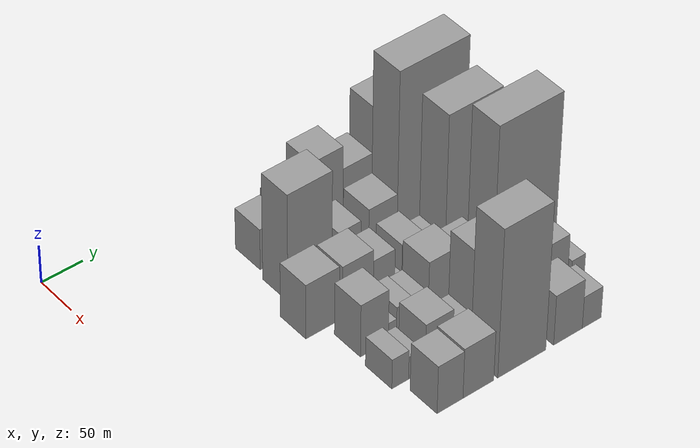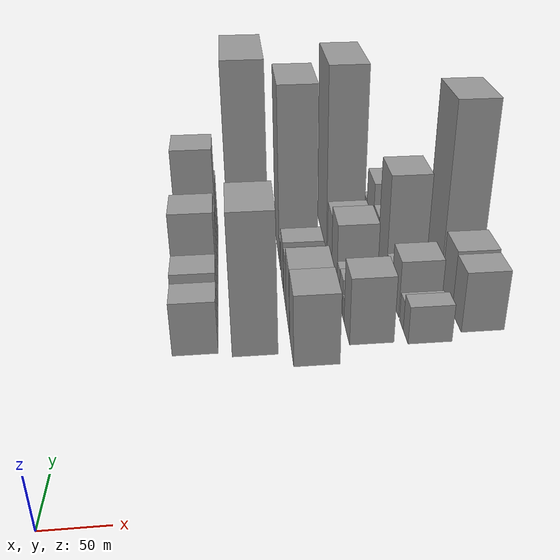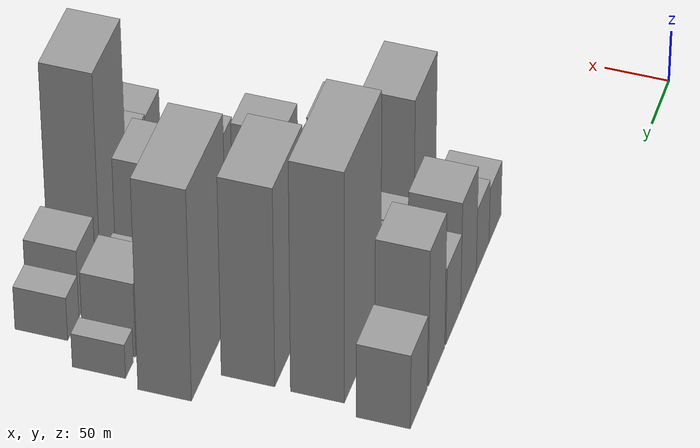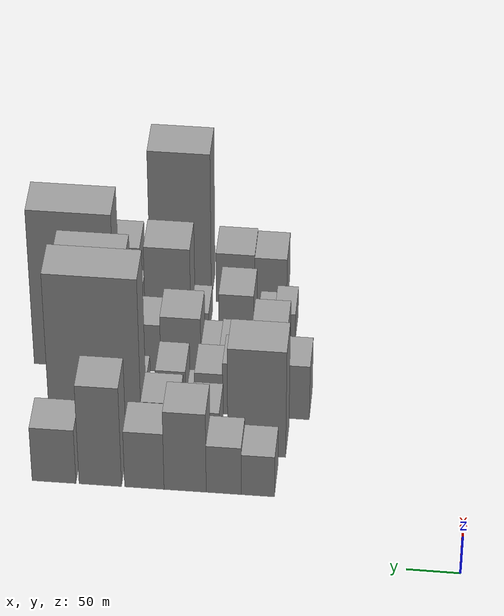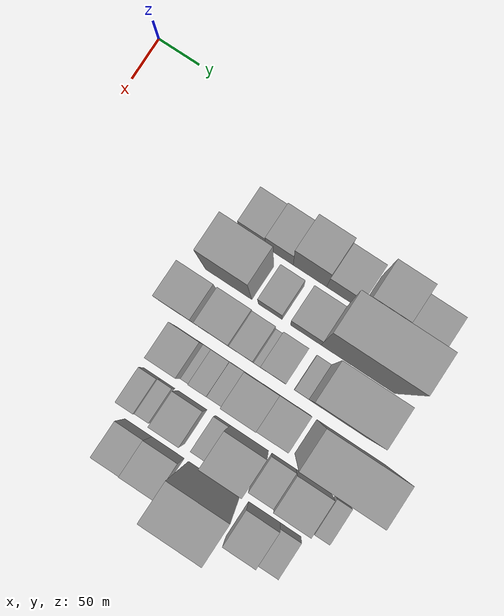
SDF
<sdf version="1.6">
 <world name="default">
  <model name="building_34">
   <static>1</static>
   <pose>100.0000 195.0250 0 0.000000 0.000000 0.000000</pose>
   <link name="link">
    <pose>0 0 27.00 0 0 0</pose>
    <collision name="collision"><geometry><box><size>40.0000 31.7022 54.0000</size></box></geometry></collision>
    <visual name="visual">
     <cast_shadows>0</cast_shadows>
     <geometry><box><size>40.0000 31.7022 54.0000</size></box></geometry>
     <material>
      <script>
       <uri>model://grey_wall/materials/scripts</uri>
       <uri>model://grey_wall/materials/textures</uri>
       <name>vrc/grey_wall</name>
      </script>
     </material>
    </visual>
   </link>
  </model>
  <model name="building_35">
   <static>1</static>
   <pose>100.0000 227.4179 0 0.000000 0.000000 0.000000</pose>
   <link name="link">
    <pose>0 0 31.50 0 0 0</pose>
    <collision name="collision"><geometry><box><size>40.0000 33.0837 63.0000</size></box></geometry></collision>
    <visual name="visual">
     <cast_shadows>0</cast_shadows>
     <geometry><box><size>40.0000 33.0837 63.0000</size></box></geometry>
     <material>
      <script>
       <uri>model://grey_wall/materials/scripts</uri>
       <uri>model://grey_wall/materials/textures</uri>
       <name>vrc/grey_wall</name>
      </script>
     </material>
    </visual>
   </link>
  </model>
  <model name="building_36">
   <static>1</static>
   <pose>100.0000 263.9914 0 0.000000 0.000000 0.000000</pose>
   <link name="link">
    <pose>0 0 52.50 0 0 0</pose>
    <collision name="collision"><geometry><box><size>40.0000 40.0632 105.0000</size></box></geometry></collision>
    <visual name="visual">
     <cast_shadows>0</cast_shadows>
     <geometry><box><size>40.0000 40.0632 105.0000</size></box></geometry>
     <material>
      <script>
       <uri>model://grey_wall/materials/scripts</uri>
       <uri>model://grey_wall/materials/textures</uri>
       <name>vrc/grey_wall</name>
      </script>
     </material>
    </visual>
   </link>
  </model>
  <model name="building_37">
   <static>1</static>
   <pose>100.0000 302.7851 0 0.000000 0.000000 0.000000</pose>
   <link name="link">
    <pose>0 0 37.50 0 0 0</pose>
    <collision name="collision"><geometry><box><size>40.0000 37.5243 75.0000</size></box></geometry></collision>
    <visual name="visual">
     <cast_shadows>0</cast_shadows>
     <geometry><box><size>40.0000 37.5243 75.0000</size></box></geometry>
     <material>
      <script>
       <uri>model://grey_wall/materials/scripts</uri>
       <uri>model://grey_wall/materials/textures</uri>
       <name>vrc/grey_wall</name>
      </script>
     </material>
    </visual>
   </link>
  </model>
  <model name="building_38">
   <static>1</static>
   <pose>100.0000 344.7998 0 0.000000 0.000000 0.000000</pose>
   <link name="link">
    <pose>0 0 66.00 0 0 0</pose>
    <collision name="collision"><geometry><box><size>40.0000 40.5052 132.0000</size></box></geometry></collision>
    <visual name="visual">
     <cast_shadows>0</cast_shadows>
     <geometry><box><size>40.0000 40.5052 132.0000</size></box></geometry>
     <material>
      <script>
       <uri>model://grey_wall/materials/scripts</uri>
       <uri>model://grey_wall/materials/textures</uri>
       <name>vrc/grey_wall</name>
      </script>
     </material>
    </visual>
   </link>
  </model>
  <model name="building_39">
   <static>1</static>
   <pose>100.0000 388.9732 0 0.000000 0.000000 0.000000</pose>
   <link name="link">
    <pose>0 0 36.00 0 0 0</pose>
    <collision name="collision"><geometry><box><size>40.0000 41.8415 72.0000</size></box></geometry></collision>
    <visual name="visual">
     <cast_shadows>0</cast_shadows>
     <geometry><box><size>40.0000 41.8415 72.0000</size></box></geometry>
     <material>
      <script>
       <uri>model://grey_wall/materials/scripts</uri>
       <uri>model://grey_wall/materials/textures</uri>
       <name>vrc/grey_wall</name>
      </script>
     </material>
    </visual>
   </link>
  </model>
  <model name="building_84">
   <static>1</static>
   <pose>152.0000 200.6738 0 0.000000 0.000000 0.000000</pose>
   <link name="link">
    <pose>0 0 70.50 0 0 0</pose>
    <collision name="collision"><geometry><box><size>40.0000 55.5974 141.0000</size></box></geometry></collision>
    <visual name="visual">
     <cast_shadows>0</cast_shadows>
     <geometry><box><size>40.0000 55.5974 141.0000</size></box></geometry>
     <material>
      <script>
       <uri>model://grey_wall/materials/scripts</uri>
       <uri>model://grey_wall/materials/textures</uri>
       <name>vrc/grey_wall</name>
      </script>
     </material>
    </visual>
   </link>
  </model>
  <model name="building_85">
   <static>1</static>
   <pose>152.0000 250.6123 0 0.000000 0.000000 0.000000</pose>
   <link name="link">
    <pose>0 0 27.00 0 0 0</pose>
    <collision name="collision"><geometry><box><size>40.0000 28.2796 54.0000</size></box></geometry></collision>
    <visual name="visual">
     <cast_shadows>0</cast_shadows>
     <geometry><box><size>40.0000 28.2796 54.0000</size></box></geometry>
     <material>
      <script>
       <uri>model://grey_wall/materials/scripts</uri>
       <uri>model://grey_wall/materials/textures</uri>
       <name>vrc/grey_wall</name>
      </script>
     </material>
    </visual>
   </link>
  </model>
  <model name="building_86">
   <static>1</static>
   <pose>152.0000 292.9332 0 0.000000 0.000000 0.000000</pose>
   <link name="link">
    <pose>0 0 31.50 0 0 0</pose>
    <collision name="collision"><geometry><box><size>40.0000 36.3621 63.0000</size></box></geometry></collision>
    <visual name="visual">
     <cast_shadows>0</cast_shadows>
     <geometry><box><size>40.0000 36.3621 63.0000</size></box></geometry>
     <material>
      <script>
       <uri>model://grey_wall/materials/scripts</uri>
       <uri>model://grey_wall/materials/textures</uri>
       <name>vrc/grey_wall</name>
      </script>
     </material>
    </visual>
   </link>
  </model>
  <model name="building_87">
   <static>1</static>
   <pose>152.0000 355.1175 0 0.000000 0.000000 0.000000</pose>
   <link name="link">
    <pose>0 0 111.00 0 0 0</pose>
    <collision name="collision"><geometry><box><size>40.0000 88.0067 222.0000</size></box></geometry></collision>
    <visual name="visual">
     <cast_shadows>0</cast_shadows>
     <geometry><box><size>40.0000 88.0067 222.0000</size></box></geometry>
     <material>
      <script>
       <uri>model://grey_wall/materials/scripts</uri>
       <uri>model://grey_wall/materials/textures</uri>
       <name>vrc/grey_wall</name>
      </script>
     </material>
    </visual>
   </link>
  </model>
  <model name="building_128">
   <static>1</static>
   <pose>204.0000 174.9381 0 0.000000 0.000000 0.000000</pose>
   <link name="link">
    <pose>0 0 36.00 0 0 0</pose>
    <collision name="collision"><geometry><box><size>40.0000 41.4693 72.0000</size></box></geometry></collision>
    <visual name="visual">
     <cast_shadows>0</cast_shadows>
     <geometry><box><size>40.0000 41.4693 72.0000</size></box></geometry>
     <material>
      <script>
       <uri>model://grey_wall/materials/scripts</uri>
       <uri>model://grey_wall/materials/textures</uri>
       <name>vrc/grey_wall</name>
      </script>
     </material>
    </visual>
   </link>
  </model>
  <model name="building_129">
   <static>1</static>
   <pose>204.0000 218.9624 0 0.000000 0.000000 0.000000</pose>
   <link name="link">
    <pose>0 0 34.50 0 0 0</pose>
    <collision name="collision"><geometry><box><size>40.0000 38.5792 69.0000</size></box></geometry></collision>
    <visual name="visual">
     <cast_shadows>0</cast_shadows>
     <geometry><box><size>40.0000 38.5792 69.0000</size></box></geometry>
     <material>
      <script>
       <uri>model://grey_wall/materials/scripts</uri>
       <uri>model://grey_wall/materials/textures</uri>
       <name>vrc/grey_wall</name>
      </script>
     </material>
    </visual>
   </link>
  </model>
  <model name="building_130">
   <static>1</static>
   <pose>204.0000 251.7730 0 0.000000 0.000000 0.000000</pose>
   <link name="link">
    <pose>0 0 27.00 0 0 0</pose>
    <collision name="collision"><geometry><box><size>40.0000 27.0419 54.0000</size></box></geometry></collision>
    <visual name="visual">
     <cast_shadows>0</cast_shadows>
     <geometry><box><size>40.0000 27.0419 54.0000</size></box></geometry>
     <material>
      <script>
       <uri>model://grey_wall/materials/scripts</uri>
       <uri>model://grey_wall/materials/textures</uri>
       <name>vrc/grey_wall</name>
      </script>
     </material>
    </visual>
   </link>
  </model>
  <model name="building_131">
   <static>1</static>
   <pose>204.0000 269.7347 0 0.000000 0.000000 0.000000</pose>
   <link name="link">
    <pose>0 0 9.00 0 0 0</pose>
    <collision name="collision"><geometry><box><size>40.0000 8.8816 18.0000</size></box></geometry></collision>
    <visual name="visual">
     <cast_shadows>0</cast_shadows>
     <geometry><box><size>40.0000 8.8816 18.0000</size></box></geometry>
     <material>
      <script>
       <uri>model://grey_wall/materials/scripts</uri>
       <uri>model://grey_wall/materials/textures</uri>
       <name>vrc/grey_wall</name>
      </script>
     </material>
    </visual>
   </link>
  </model>
  <model name="building_132">
   <static>1</static>
   <pose>204.0000 288.6306 0 0.000000 0.000000 0.000000</pose>
   <link name="link">
    <pose>0 0 27.00 0 0 0</pose>
    <collision name="collision"><geometry><box><size>40.0000 28.9103 54.0000</size></box></geometry></collision>
    <visual name="visual">
     <cast_shadows>0</cast_shadows>
     <geometry><box><size>40.0000 28.9103 54.0000</size></box></geometry>
     <material>
      <script>
       <uri>model://grey_wall/materials/scripts</uri>
       <uri>model://grey_wall/materials/textures</uri>
       <name>vrc/grey_wall</name>
      </script>
     </material>
    </visual>
   </link>
  </model>
  <model name="building_133">
   <static>1</static>
   <pose>204.0000 321.4136 0 0.000000 0.000000 0.000000</pose>
   <link name="link">
    <pose>0 0 16.50 0 0 0</pose>
    <collision name="collision"><geometry><box><size>40.0000 16.6556 33.0000</size></box></geometry></collision>
    <visual name="visual">
     <cast_shadows>0</cast_shadows>
     <geometry><box><size>40.0000 16.6556 33.0000</size></box></geometry>
     <material>
      <script>
       <uri>model://grey_wall/materials/scripts</uri>
       <uri>model://grey_wall/materials/textures</uri>
       <name>vrc/grey_wall</name>
      </script>
     </material>
    </visual>
   </link>
  </model>
  <model name="building_134">
   <static>1</static>
   <pose>204.0000 363.9510 0 0.000000 0.000000 0.000000</pose>
   <link name="link">
    <pose>0 0 96.00 0 0 0</pose>
    <collision name="collision"><geometry><box><size>40.0000 68.4193 192.0000</size></box></geometry></collision>
    <visual name="visual">
     <cast_shadows>0</cast_shadows>
     <geometry><box><size>40.0000 68.4193 192.0000</size></box></geometry>
     <material>
      <script>
       <uri>model://grey_wall/materials/scripts</uri>
       <uri>model://grey_wall/materials/textures</uri>
       <name>vrc/grey_wall</name>
      </script>
     </material>
    </visual>
   </link>
  </model>
  <model name="building_177">
   <static>1</static>
   <pose>256.0000 197.2609 0 0.000000 0.000000 0.000000</pose>
   <link name="link">
    <pose>0 0 34.50 0 0 0</pose>
    <collision name="collision"><geometry><box><size>40.0000 34.6759 69.0000</size></box></geometry></collision>
    <visual name="visual">
     <cast_shadows>0</cast_shadows>
     <geometry><box><size>40.0000 34.6759 69.0000</size></box></geometry>
     <material>
      <script>
       <uri>model://grey_wall/materials/scripts</uri>
       <uri>model://grey_wall/materials/textures</uri>
       <name>vrc/grey_wall</name>
      </script>
     </material>
    </visual>
   </link>
  </model>
  <model name="building_178">
   <static>1</static>
   <pose>256.0000 219.7130 0 0.000000 0.000000 0.000000</pose>
   <link name="link">
    <pose>0 0 12.00 0 0 0</pose>
    <collision name="collision"><geometry><box><size>40.0000 10.2283 24.0000</size></box></geometry></collision>
    <visual name="visual">
     <cast_shadows>0</cast_shadows>
     <geometry><box><size>40.0000 10.2283 24.0000</size></box></geometry>
     <material>
      <script>
       <uri>model://grey_wall/materials/scripts</uri>
       <uri>model://grey_wall/materials/textures</uri>
       <name>vrc/grey_wall</name>
      </script>
     </material>
    </visual>
   </link>
  </model>
  <model name="building_179">
   <static>1</static>
   <pose>256.0000 235.4978 0 0.000000 0.000000 0.000000</pose>
   <link name="link">
    <pose>0 0 19.50 0 0 0</pose>
    <collision name="collision"><geometry><box><size>40.0000 21.3411 39.0000</size></box></geometry></collision>
    <visual name="visual">
     <cast_shadows>0</cast_shadows>
     <geometry><box><size>40.0000 21.3411 39.0000</size></box></geometry>
     <material>
      <script>
       <uri>model://grey_wall/materials/scripts</uri>
       <uri>model://grey_wall/materials/textures</uri>
       <name>vrc/grey_wall</name>
      </script>
     </material>
    </visual>
   </link>
  </model>
  <model name="building_180">
   <static>1</static>
   <pose>256.0000 255.3983 0 0.000000 0.000000 0.000000</pose>
   <link name="link">
    <pose>0 0 18.00 0 0 0</pose>
    <collision name="collision"><geometry><box><size>40.0000 18.4599 36.0000</size></box></geometry></collision>
    <visual name="visual">
     <cast_shadows>0</cast_shadows>
     <geometry><box><size>40.0000 18.4599 36.0000</size></box></geometry>
     <material>
      <script>
       <uri>model://grey_wall/materials/scripts</uri>
       <uri>model://grey_wall/materials/textures</uri>
       <name>vrc/grey_wall</name>
      </script>
     </material>
    </visual>
   </link>
  </model>
  <model name="building_181">
   <static>1</static>
   <pose>256.0000 284.3922 0 0.000000 0.000000 0.000000</pose>
   <link name="link">
    <pose>0 0 37.50 0 0 0</pose>
    <collision name="collision"><geometry><box><size>40.0000 39.5279 75.0000</size></box></geometry></collision>
    <visual name="visual">
     <cast_shadows>0</cast_shadows>
     <geometry><box><size>40.0000 39.5279 75.0000</size></box></geometry>
     <material>
      <script>
       <uri>model://grey_wall/materials/scripts</uri>
       <uri>model://grey_wall/materials/textures</uri>
       <name>vrc/grey_wall</name>
      </script>
     </material>
    </visual>
   </link>
  </model>
  <model name="building_182">
   <static>1</static>
   <pose>256.0000 322.0938 0 0.000000 0.000000 0.000000</pose>
   <link name="link">
    <pose>0 0 31.50 0 0 0</pose>
    <collision name="collision"><geometry><box><size>40.0000 35.8755 63.0000</size></box></geometry></collision>
    <visual name="visual">
     <cast_shadows>0</cast_shadows>
     <geometry><box><size>40.0000 35.8755 63.0000</size></box></geometry>
     <material>
      <script>
       <uri>model://grey_wall/materials/scripts</uri>
       <uri>model://grey_wall/materials/textures</uri>
       <name>vrc/grey_wall</name>
      </script>
     </material>
    </visual>
   </link>
  </model>
  <model name="building_183">
   <static>1</static>
   <pose>256.0000 388.6539 0 0.000000 0.000000 0.000000</pose>
   <link name="link">
    <pose>0 0 102.00 0 0 0</pose>
    <collision name="collision"><geometry><box><size>40.0000 81.2446 204.0000</size></box></geometry></collision>
    <visual name="visual">
     <cast_shadows>0</cast_shadows>
     <geometry><box><size>40.0000 81.2446 204.0000</size></box></geometry>
     <material>
      <script>
       <uri>model://grey_wall/materials/scripts</uri>
       <uri>model://grey_wall/materials/textures</uri>
       <name>vrc/grey_wall</name>
      </script>
     </material>
    </visual>
   </link>
  </model>
  <model name="building_227">
   <static>1</static>
   <pose>308.0000 186.6073 0 0.000000 0.000000 0.000000</pose>
   <link name="link">
    <pose>0 0 19.50 0 0 0</pose>
    <collision name="collision"><geometry><box><size>40.0000 20.7044 39.0000</size></box></geometry></collision>
    <visual name="visual">
     <cast_shadows>0</cast_shadows>
     <geometry><box><size>40.0000 20.7044 39.0000</size></box></geometry>
     <material>
      <script>
       <uri>model://grey_wall/materials/scripts</uri>
       <uri>model://grey_wall/materials/textures</uri>
       <name>vrc/grey_wall</name>
      </script>
     </material>
    </visual>
   </link>
  </model>
  <model name="building_228">
   <static>1</static>
   <pose>308.0000 205.2466 0 0.000000 0.000000 0.000000</pose>
   <link name="link">
    <pose>0 0 15.00 0 0 0</pose>
    <collision name="collision"><geometry><box><size>40.0000 16.5743 30.0000</size></box></geometry></collision>
    <visual name="visual">
     <cast_shadows>0</cast_shadows>
     <geometry><box><size>40.0000 16.5743 30.0000</size></box></geometry>
     <material>
      <script>
       <uri>model://grey_wall/materials/scripts</uri>
       <uri>model://grey_wall/materials/textures</uri>
       <name>vrc/grey_wall</name>
      </script>
     </material>
    </visual>
   </link>
  </model>
  <model name="building_229">
   <static>1</static>
   <pose>308.0000 234.7748 0 0.000000 0.000000 0.000000</pose>
   <link name="link">
    <pose>0 0 30.00 0 0 0</pose>
    <collision name="collision"><geometry><box><size>40.0000 34.4822 60.0000</size></box></geometry></collision>
    <visual name="visual">
     <cast_shadows>0</cast_shadows>
     <geometry><box><size>40.0000 34.4822 60.0000</size></box></geometry>
     <material>
      <script>
       <uri>model://grey_wall/materials/scripts</uri>
       <uri>model://grey_wall/materials/textures</uri>
       <name>vrc/grey_wall</name>
      </script>
     </material>
    </visual>
   </link>
  </model>
  <model name="building_230">
   <static>1</static>
   <pose>308.0000 270.9522 0 0.000000 0.000000 0.000000</pose>
   <link name="link">
    <pose>0 0 16.50 0 0 0</pose>
    <collision name="collision"><geometry><box><size>40.0000 17.8726 33.0000</size></box></geometry></collision>
    <visual name="visual">
     <cast_shadows>0</cast_shadows>
     <geometry><box><size>40.0000 17.8726 33.0000</size></box></geometry>
     <material>
      <script>
       <uri>model://grey_wall/materials/scripts</uri>
       <uri>model://grey_wall/materials/textures</uri>
       <name>vrc/grey_wall</name>
      </script>
     </material>
    </visual>
   </link>
  </model>
  <model name="building_231">
   <static>1</static>
   <pose>308.0000 302.4777 0 0.000000 0.000000 0.000000</pose>
   <link name="link">
    <pose>0 0 58.50 0 0 0</pose>
    <collision name="collision"><geometry><box><size>40.0000 45.1785 117.0000</size></box></geometry></collision>
    <visual name="visual">
     <cast_shadows>0</cast_shadows>
     <geometry><box><size>40.0000 45.1785 117.0000</size></box></geometry>
     <material>
      <script>
       <uri>model://grey_wall/materials/scripts</uri>
       <uri>model://grey_wall/materials/textures</uri>
       <name>vrc/grey_wall</name>
      </script>
     </material>
    </visual>
   </link>
  </model>
  <model name="building_232">
   <static>1</static>
   <pose>308.0000 343.3531 0 0.000000 0.000000 0.000000</pose>
   <link name="link">
    <pose>0 0 24.00 0 0 0</pose>
    <collision name="collision"><geometry><box><size>40.0000 28.5722 48.0000</size></box></geometry></collision>
    <visual name="visual">
     <cast_shadows>0</cast_shadows>
     <geometry><box><size>40.0000 28.5722 48.0000</size></box></geometry>
     <material>
      <script>
       <uri>model://grey_wall/materials/scripts</uri>
       <uri>model://grey_wall/materials/textures</uri>
       <name>vrc/grey_wall</name>
      </script>
     </material>
    </visual>
   </link>
  </model>
  <model name="building_233">
   <static>1</static>
   <pose>308.0000 378.2924 0 0.000000 0.000000 0.000000</pose>
   <link name="link">
    <pose>0 0 36.00 0 0 0</pose>
    <collision name="collision"><geometry><box><size>40.0000 41.3063 72.0000</size></box></geometry></collision>
    <visual name="visual">
     <cast_shadows>0</cast_shadows>
     <geometry><box><size>40.0000 41.3063 72.0000</size></box></geometry>
     <material>
      <script>
       <uri>model://grey_wall/materials/scripts</uri>
       <uri>model://grey_wall/materials/textures</uri>
       <name>vrc/grey_wall</name>
      </script>
     </material>
    </visual>
   </link>
  </model>
  <model name="building_234">
   <static>1</static>
   <pose>308.0000 412.7485 0 0.000000 0.000000 0.000000</pose>
   <link name="link">
    <pose>0 0 16.50 0 0 0</pose>
    <collision name="collision"><geometry><box><size>40.0000 17.6059 33.0000</size></box></geometry></collision>
    <visual name="visual">
     <cast_shadows>0</cast_shadows>
     <geometry><box><size>40.0000 17.6059 33.0000</size></box></geometry>
     <material>
      <script>
       <uri>model://grey_wall/materials/scripts</uri>
       <uri>model://grey_wall/materials/textures</uri>
       <name>vrc/grey_wall</name>
      </script>
     </material>
    </visual>
   </link>
  </model>
  <model name="building_276">
   <static>1</static>
   <pose>360.0000 204.9773 0 0.000000 0.000000 0.000000</pose>
   <link name="link">
    <pose>0 0 31.50 0 0 0</pose>
    <collision name="collision"><geometry><box><size>40.0000 32.1746 63.0000</size></box></geometry></collision>
    <visual name="visual">
     <cast_shadows>0</cast_shadows>
     <geometry><box><size>40.0000 32.1746 63.0000</size></box></geometry>
     <material>
      <script>
       <uri>model://grey_wall/materials/scripts</uri>
       <uri>model://grey_wall/materials/textures</uri>
       <name>vrc/grey_wall</name>
      </script>
     </material>
    </visual>
   </link>
  </model>
  <model name="building_277">
   <static>1</static>
   <pose>360.0000 240.3819 0 0.000000 0.000000 0.000000</pose>
   <link name="link">
    <pose>0 0 33.00 0 0 0</pose>
    <collision name="collision"><geometry><box><size>40.0000 38.6346 66.0000</size></box></geometry></collision>
    <visual name="visual">
     <cast_shadows>0</cast_shadows>
     <geometry><box><size>40.0000 38.6346 66.0000</size></box></geometry>
     <material>
      <script>
       <uri>model://grey_wall/materials/scripts</uri>
       <uri>model://grey_wall/materials/textures</uri>
       <name>vrc/grey_wall</name>
      </script>
     </material>
    </visual>
   </link>
  </model>
  <model name="building_278">
   <static>1</static>
   <pose>360.0000 295.2570 0 0.000000 0.000000 0.000000</pose>
   <link name="link">
    <pose>0 0 97.50 0 0 0</pose>
    <collision name="collision"><geometry><box><size>40.0000 61.1156 195.0000</size></box></geometry></collision>
    <visual name="visual">
     <cast_shadows>0</cast_shadows>
     <geometry><box><size>40.0000 61.1156 195.0000</size></box></geometry>
     <material>
      <script>
       <uri>model://grey_wall/materials/scripts</uri>
       <uri>model://grey_wall/materials/textures</uri>
       <name>vrc/grey_wall</name>
      </script>
     </material>
    </visual>
   </link>
  </model>
  <model name="building_279">
   <static>1</static>
   <pose>360.0000 354.2918 0 0.000000 0.000000 0.000000</pose>
   <link name="link">
    <pose>0 0 33.00 0 0 0</pose>
    <collision name="collision"><geometry><box><size>40.0000 36.9540 66.0000</size></box></geometry></collision>
    <visual name="visual">
     <cast_shadows>0</cast_shadows>
     <geometry><box><size>40.0000 36.9540 66.0000</size></box></geometry>
     <material>
      <script>
       <uri>model://grey_wall/materials/scripts</uri>
       <uri>model://grey_wall/materials/textures</uri>
       <name>vrc/grey_wall</name>
      </script>
     </material>
    </visual>
   </link>
  </model>
  <model name="building_280">
   <static>1</static>
   <pose>360.0000 385.0605 0 0.000000 0.000000 0.000000</pose>
   <link name="link">
    <pose>0 0 21.00 0 0 0</pose>
    <collision name="collision"><geometry><box><size>40.0000 24.5834 42.0000</size></box></geometry></collision>
    <visual name="visual">
     <cast_shadows>0</cast_shadows>
     <geometry><box><size>40.0000 24.5834 42.0000</size></box></geometry>
     <material>
      <script>
       <uri>model://grey_wall/materials/scripts</uri>
       <uri>model://grey_wall/materials/textures</uri>
       <name>vrc/grey_wall</name>
      </script>
     </material>
    </visual>
   </link>
  </model>
 </world>
</sdf>
